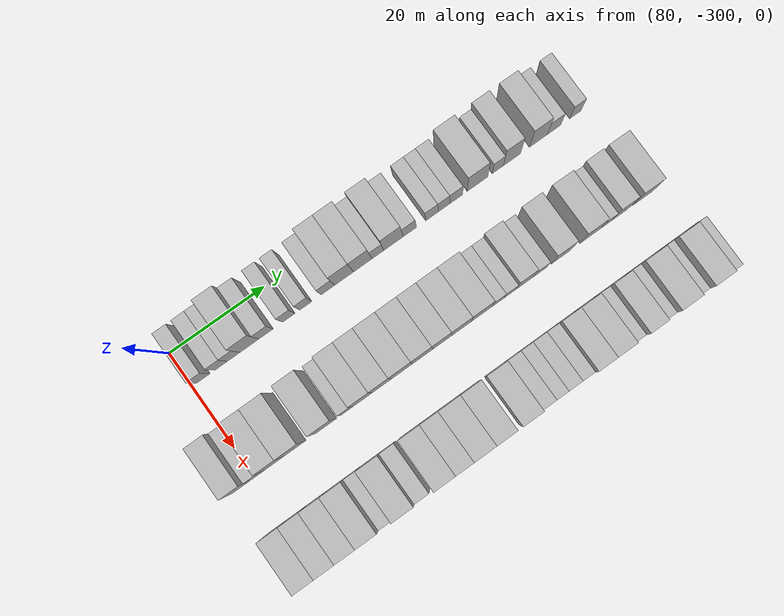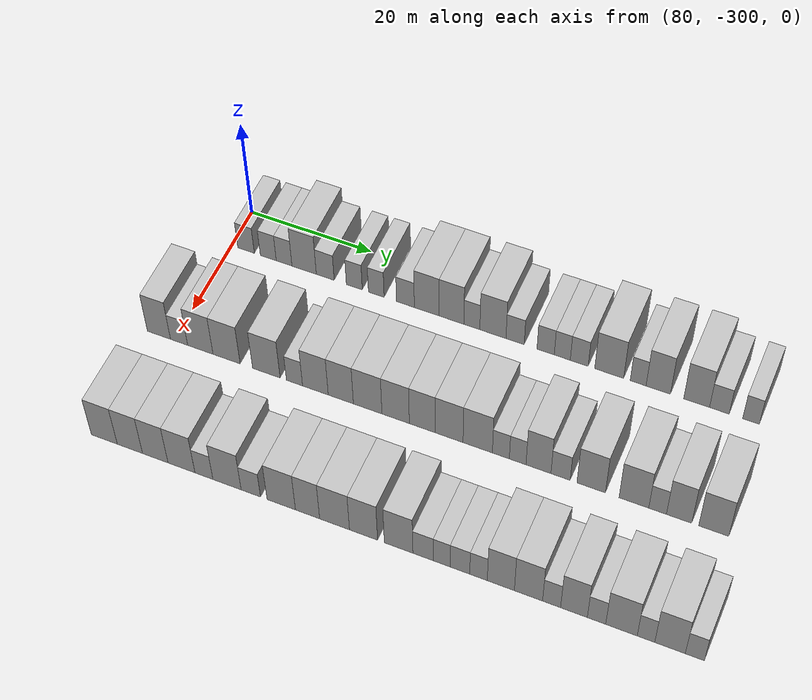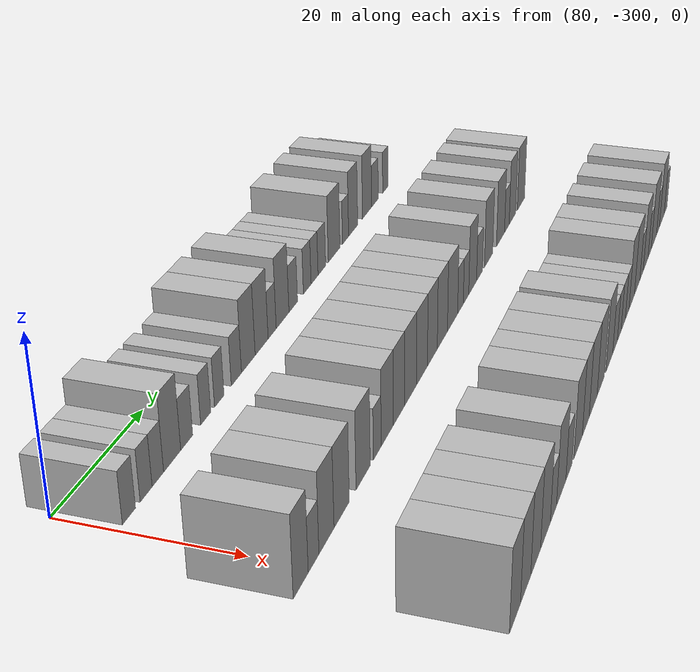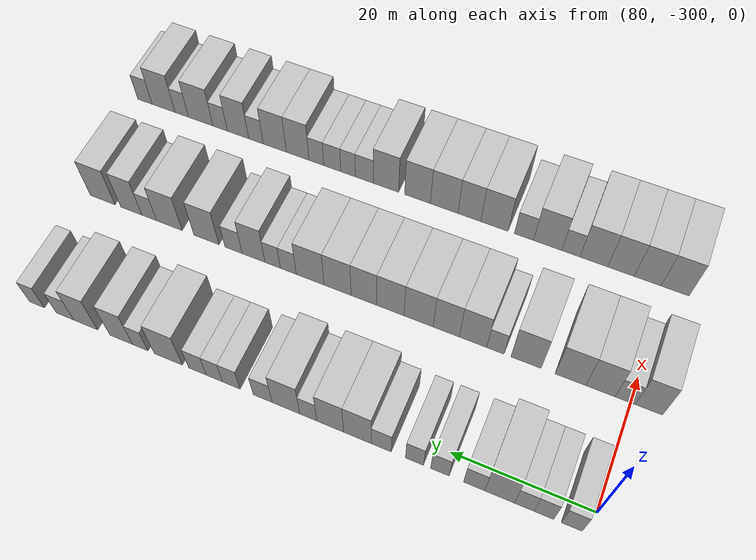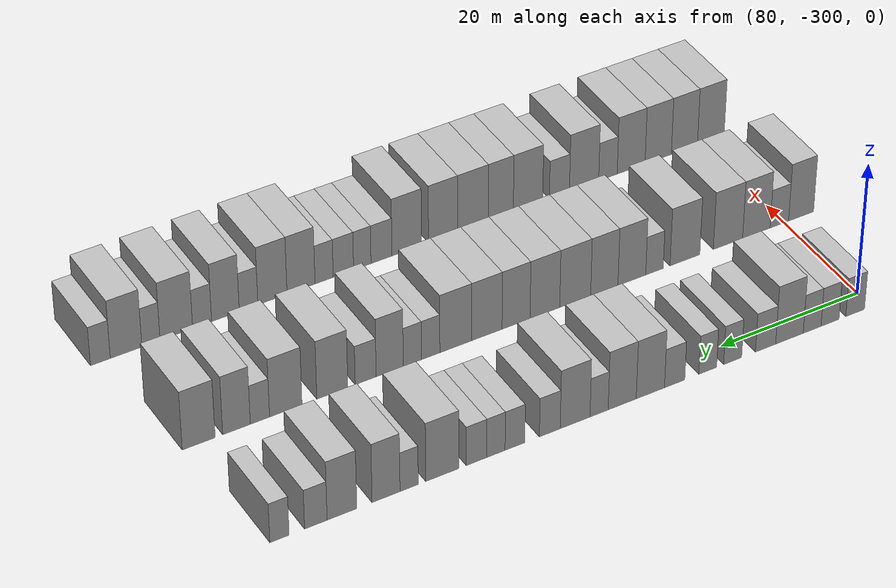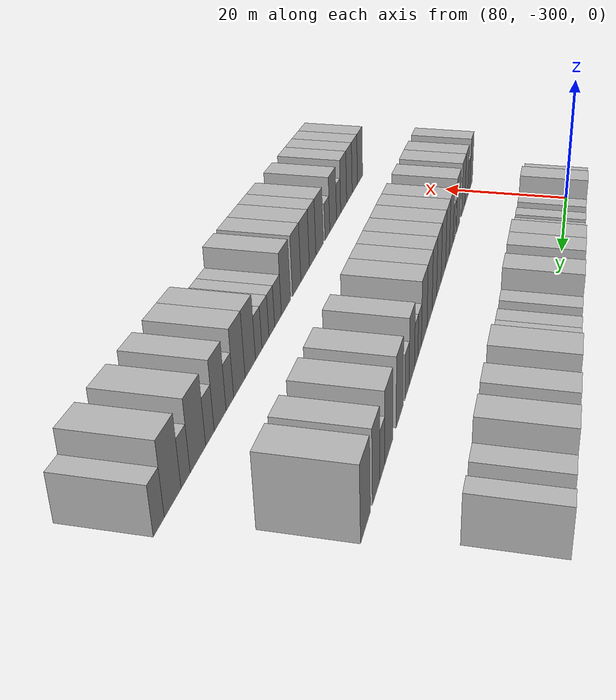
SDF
<sdf version="1.6">
 <world name="default">
  <model name="building_538">
   <static>1</static>
   <pose>82.0000 -297.5977 0 0.000000 0.000000 0.000000</pose>
   <link name="link">
    <pose>0 0 3.00 0 0 0</pose>
    <collision name="collision"><geometry><box><size>10.0000 2.7727 6.0000</size></box></geometry></collision>
    <visual name="visual">
     <cast_shadows>0</cast_shadows>
     <geometry><box><size>10.0000 2.7727 6.0000</size></box></geometry>
     <material>
      <script>
       <uri>model://HANNAS_wall/materials/scripts</uri>
       <uri>model://HANNAS_wall/materials/textures</uri>
       <name>vrc/HANNAS_wall</name>
      </script>
     </material>
    </visual>
   </link>
  </model>
  <model name="building_539">
   <static>1</static>
   <pose>82.0000 -293.8858 0 0.000000 0.000000 0.000000</pose>
   <link name="link">
    <pose>0 0 3.00 0 0 0</pose>
    <collision name="collision"><geometry><box><size>10.0000 2.6512 6.0000</size></box></geometry></collision>
    <visual name="visual">
     <cast_shadows>0</cast_shadows>
     <geometry><box><size>10.0000 2.6512 6.0000</size></box></geometry>
     <material>
      <script>
       <uri>model://HANNAS_wall/materials/scripts</uri>
       <uri>model://HANNAS_wall/materials/textures</uri>
       <name>vrc/HANNAS_wall</name>
      </script>
     </material>
    </visual>
   </link>
  </model>
  <model name="building_540">
   <static>1</static>
   <pose>82.0000 -291.2548 0 0.000000 0.000000 0.000000</pose>
   <link name="link">
    <pose>0 0 3.00 0 0 0</pose>
    <collision name="collision"><geometry><box><size>10.0000 2.6107 6.0000</size></box></geometry></collision>
    <visual name="visual">
     <cast_shadows>0</cast_shadows>
     <geometry><box><size>10.0000 2.6107 6.0000</size></box></geometry>
     <material>
      <script>
       <uri>model://HANNAS_wall/materials/scripts</uri>
       <uri>model://HANNAS_wall/materials/textures</uri>
       <name>vrc/HANNAS_wall</name>
      </script>
     </material>
    </visual>
   </link>
  </model>
  <model name="building_541">
   <static>1</static>
   <pose>82.0000 -287.9362 0 0.000000 0.000000 0.000000</pose>
   <link name="link">
    <pose>0 0 4.50 0 0 0</pose>
    <collision name="collision"><geometry><box><size>10.0000 4.0264 9.0000</size></box></geometry></collision>
    <visual name="visual">
     <cast_shadows>0</cast_shadows>
     <geometry><box><size>10.0000 4.0264 9.0000</size></box></geometry>
     <material>
      <script>
       <uri>model://HANNAS_wall/materials/scripts</uri>
       <uri>model://HANNAS_wall/materials/textures</uri>
       <name>vrc/HANNAS_wall</name>
      </script>
     </material>
    </visual>
   </link>
  </model>
  <model name="building_542">
   <static>1</static>
   <pose>82.0000 -284.4585 0 0.000000 0.000000 0.000000</pose>
   <link name="link">
    <pose>0 0 3.00 0 0 0</pose>
    <collision name="collision"><geometry><box><size>10.0000 2.9289 6.0000</size></box></geometry></collision>
    <visual name="visual">
     <cast_shadows>0</cast_shadows>
     <geometry><box><size>10.0000 2.9289 6.0000</size></box></geometry>
     <material>
      <script>
       <uri>model://HANNAS_wall/materials/scripts</uri>
       <uri>model://HANNAS_wall/materials/textures</uri>
       <name>vrc/HANNAS_wall</name>
      </script>
     </material>
    </visual>
   </link>
  </model>
  <model name="building_543">
   <static>1</static>
   <pose>82.0000 -279.6965 0 0.000000 0.000000 0.000000</pose>
   <link name="link">
    <pose>0 0 3.00 0 0 0</pose>
    <collision name="collision"><geometry><box><size>10.0000 2.5951 6.0000</size></box></geometry></collision>
    <visual name="visual">
     <cast_shadows>0</cast_shadows>
     <geometry><box><size>10.0000 2.5951 6.0000</size></box></geometry>
     <material>
      <script>
       <uri>model://HANNAS_wall/materials/scripts</uri>
       <uri>model://HANNAS_wall/materials/textures</uri>
       <name>vrc/HANNAS_wall</name>
      </script>
     </material>
    </visual>
   </link>
  </model>
  <model name="building_544">
   <static>1</static>
   <pose>82.0000 -276.1270 0 0.000000 0.000000 0.000000</pose>
   <link name="link">
    <pose>0 0 3.00 0 0 0</pose>
    <collision name="collision"><geometry><box><size>10.0000 2.5439 6.0000</size></box></geometry></collision>
    <visual name="visual">
     <cast_shadows>0</cast_shadows>
     <geometry><box><size>10.0000 2.5439 6.0000</size></box></geometry>
     <material>
      <script>
       <uri>model://HANNAS_wall/materials/scripts</uri>
       <uri>model://HANNAS_wall/materials/textures</uri>
       <name>vrc/HANNAS_wall</name>
      </script>
     </material>
    </visual>
   </link>
  </model>
  <model name="building_545">
   <static>1</static>
   <pose>82.0000 -271.4178 0 0.000000 0.000000 0.000000</pose>
   <link name="link">
    <pose>0 0 3.00 0 0 0</pose>
    <collision name="collision"><geometry><box><size>10.0000 2.8745 6.0000</size></box></geometry></collision>
    <visual name="visual">
     <cast_shadows>0</cast_shadows>
     <geometry><box><size>10.0000 2.8745 6.0000</size></box></geometry>
     <material>
      <script>
       <uri>model://HANNAS_wall/materials/scripts</uri>
       <uri>model://HANNAS_wall/materials/textures</uri>
       <name>vrc/HANNAS_wall</name>
      </script>
     </material>
    </visual>
   </link>
  </model>
  <model name="building_546">
   <static>1</static>
   <pose>82.0000 -267.9855 0 0.000000 0.000000 0.000000</pose>
   <link name="link">
    <pose>0 0 4.50 0 0 0</pose>
    <collision name="collision"><geometry><box><size>10.0000 3.9901 9.0000</size></box></geometry></collision>
    <visual name="visual">
     <cast_shadows>0</cast_shadows>
     <geometry><box><size>10.0000 3.9901 9.0000</size></box></geometry>
     <material>
      <script>
       <uri>model://HANNAS_wall/materials/scripts</uri>
       <uri>model://HANNAS_wall/materials/textures</uri>
       <name>vrc/HANNAS_wall</name>
      </script>
     </material>
    </visual>
   </link>
  </model>
  <model name="building_547">
   <static>1</static>
   <pose>82.0000 -264.0298 0 0.000000 0.000000 0.000000</pose>
   <link name="link">
    <pose>0 0 4.50 0 0 0</pose>
    <collision name="collision"><geometry><box><size>10.0000 3.9214 9.0000</size></box></geometry></collision>
    <visual name="visual">
     <cast_shadows>0</cast_shadows>
     <geometry><box><size>10.0000 3.9214 9.0000</size></box></geometry>
     <material>
      <script>
       <uri>model://HANNAS_wall/materials/scripts</uri>
       <uri>model://HANNAS_wall/materials/textures</uri>
       <name>vrc/HANNAS_wall</name>
      </script>
     </material>
    </visual>
   </link>
  </model>
  <model name="building_548">
   <static>1</static>
   <pose>82.0000 -260.8040 0 0.000000 0.000000 0.000000</pose>
   <link name="link">
    <pose>0 0 3.00 0 0 0</pose>
    <collision name="collision"><geometry><box><size>10.0000 2.5300 6.0000</size></box></geometry></collision>
    <visual name="visual">
     <cast_shadows>0</cast_shadows>
     <geometry><box><size>10.0000 2.5300 6.0000</size></box></geometry>
     <material>
      <script>
       <uri>model://HANNAS_wall/materials/scripts</uri>
       <uri>model://HANNAS_wall/materials/textures</uri>
       <name>vrc/HANNAS_wall</name>
      </script>
     </material>
    </visual>
   </link>
  </model>
  <model name="building_549">
   <static>1</static>
   <pose>82.0000 -257.4780 0 0.000000 0.000000 0.000000</pose>
   <link name="link">
    <pose>0 0 4.50 0 0 0</pose>
    <collision name="collision"><geometry><box><size>10.0000 4.1220 9.0000</size></box></geometry></collision>
    <visual name="visual">
     <cast_shadows>0</cast_shadows>
     <geometry><box><size>10.0000 4.1220 9.0000</size></box></geometry>
     <material>
      <script>
       <uri>model://HANNAS_wall/materials/scripts</uri>
       <uri>model://HANNAS_wall/materials/textures</uri>
       <name>vrc/HANNAS_wall</name>
      </script>
     </material>
    </visual>
   </link>
  </model>
  <model name="building_550">
   <static>1</static>
   <pose>82.0000 -253.9893 0 0.000000 0.000000 0.000000</pose>
   <link name="link">
    <pose>0 0 3.00 0 0 0</pose>
    <collision name="collision"><geometry><box><size>10.0000 2.8555 6.0000</size></box></geometry></collision>
    <visual name="visual">
     <cast_shadows>0</cast_shadows>
     <geometry><box><size>10.0000 2.8555 6.0000</size></box></geometry>
     <material>
      <script>
       <uri>model://HANNAS_wall/materials/scripts</uri>
       <uri>model://HANNAS_wall/materials/textures</uri>
       <name>vrc/HANNAS_wall</name>
      </script>
     </material>
    </visual>
   </link>
  </model>
  <model name="building_551">
   <static>1</static>
   <pose>82.0000 -249.2170 0 0.000000 0.000000 0.000000</pose>
   <link name="link">
    <pose>0 0 3.00 0 0 0</pose>
    <collision name="collision"><geometry><box><size>10.0000 2.6891 6.0000</size></box></geometry></collision>
    <visual name="visual">
     <cast_shadows>0</cast_shadows>
     <geometry><box><size>10.0000 2.6891 6.0000</size></box></geometry>
     <material>
      <script>
       <uri>model://HANNAS_wall/materials/scripts</uri>
       <uri>model://HANNAS_wall/materials/textures</uri>
       <name>vrc/HANNAS_wall</name>
      </script>
     </material>
    </visual>
   </link>
  </model>
  <model name="building_552">
   <static>1</static>
   <pose>82.0000 -246.6298 0 0.000000 0.000000 0.000000</pose>
   <link name="link">
    <pose>0 0 3.00 0 0 0</pose>
    <collision name="collision"><geometry><box><size>10.0000 2.4854 6.0000</size></box></geometry></collision>
    <visual name="visual">
     <cast_shadows>0</cast_shadows>
     <geometry><box><size>10.0000 2.4854 6.0000</size></box></geometry>
     <material>
      <script>
       <uri>model://HANNAS_wall/materials/scripts</uri>
       <uri>model://HANNAS_wall/materials/textures</uri>
       <name>vrc/HANNAS_wall</name>
      </script>
     </material>
    </visual>
   </link>
  </model>
  <model name="building_553">
   <static>1</static>
   <pose>82.0000 -244.0040 0 0.000000 0.000000 0.000000</pose>
   <link name="link">
    <pose>0 0 3.00 0 0 0</pose>
    <collision name="collision"><geometry><box><size>10.0000 2.7661 6.0000</size></box></geometry></collision>
    <visual name="visual">
     <cast_shadows>0</cast_shadows>
     <geometry><box><size>10.0000 2.7661 6.0000</size></box></geometry>
     <material>
      <script>
       <uri>model://HANNAS_wall/materials/scripts</uri>
       <uri>model://HANNAS_wall/materials/textures</uri>
       <name>vrc/HANNAS_wall</name>
      </script>
     </material>
    </visual>
   </link>
  </model>
  <model name="building_554">
   <static>1</static>
   <pose>82.0000 -239.4024 0 0.000000 0.000000 0.000000</pose>
   <link name="link">
    <pose>0 0 4.50 0 0 0</pose>
    <collision name="collision"><geometry><box><size>10.0000 4.4371 9.0000</size></box></geometry></collision>
    <visual name="visual">
     <cast_shadows>0</cast_shadows>
     <geometry><box><size>10.0000 4.4371 9.0000</size></box></geometry>
     <material>
      <script>
       <uri>model://HANNAS_wall/materials/scripts</uri>
       <uri>model://HANNAS_wall/materials/textures</uri>
       <name>vrc/HANNAS_wall</name>
      </script>
     </material>
    </visual>
   </link>
  </model>
  <model name="building_555">
   <static>1</static>
   <pose>82.0000 -234.9754 0 0.000000 0.000000 0.000000</pose>
   <link name="link">
    <pose>0 0 3.00 0 0 0</pose>
    <collision name="collision"><geometry><box><size>10.0000 2.4167 6.0000</size></box></geometry></collision>
    <visual name="visual">
     <cast_shadows>0</cast_shadows>
     <geometry><box><size>10.0000 2.4167 6.0000</size></box></geometry>
     <material>
      <script>
       <uri>model://HANNAS_wall/materials/scripts</uri>
       <uri>model://HANNAS_wall/materials/textures</uri>
       <name>vrc/HANNAS_wall</name>
      </script>
     </material>
    </visual>
   </link>
  </model>
  <model name="building_556">
   <static>1</static>
   <pose>82.0000 -231.9183 0 0.000000 0.000000 0.000000</pose>
   <link name="link">
    <pose>0 0 4.50 0 0 0</pose>
    <collision name="collision"><geometry><box><size>10.0000 3.6974 9.0000</size></box></geometry></collision>
    <visual name="visual">
     <cast_shadows>0</cast_shadows>
     <geometry><box><size>10.0000 3.6974 9.0000</size></box></geometry>
     <material>
      <script>
       <uri>model://HANNAS_wall/materials/scripts</uri>
       <uri>model://HANNAS_wall/materials/textures</uri>
       <name>vrc/HANNAS_wall</name>
      </script>
     </material>
    </visual>
   </link>
  </model>
  <model name="building_557">
   <static>1</static>
   <pose>82.0000 -226.1289 0 0.000000 0.000000 0.000000</pose>
   <link name="link">
    <pose>0 0 4.50 0 0 0</pose>
    <collision name="collision"><geometry><box><size>10.0000 3.8814 9.0000</size></box></geometry></collision>
    <visual name="visual">
     <cast_shadows>0</cast_shadows>
     <geometry><box><size>10.0000 3.8814 9.0000</size></box></geometry>
     <material>
      <script>
       <uri>model://HANNAS_wall/materials/scripts</uri>
       <uri>model://HANNAS_wall/materials/textures</uri>
       <name>vrc/HANNAS_wall</name>
      </script>
     </material>
    </visual>
   </link>
  </model>
  <model name="building_558">
   <static>1</static>
   <pose>82.0000 -222.7239 0 0.000000 0.000000 0.000000</pose>
   <link name="link">
    <pose>0 0 3.00 0 0 0</pose>
    <collision name="collision"><geometry><box><size>10.0000 2.9287 6.0000</size></box></geometry></collision>
    <visual name="visual">
     <cast_shadows>0</cast_shadows>
     <geometry><box><size>10.0000 2.9287 6.0000</size></box></geometry>
     <material>
      <script>
       <uri>model://HANNAS_wall/materials/scripts</uri>
       <uri>model://HANNAS_wall/materials/textures</uri>
       <name>vrc/HANNAS_wall</name>
      </script>
     </material>
    </visual>
   </link>
  </model>
  <model name="building_559">
   <static>1</static>
   <pose>82.0000 -218.0207 0 0.000000 0.000000 0.000000</pose>
   <link name="link">
    <pose>0 0 3.00 0 0 0</pose>
    <collision name="collision"><geometry><box><size>10.0000 2.4777 6.0000</size></box></geometry></collision>
    <visual name="visual">
     <cast_shadows>0</cast_shadows>
     <geometry><box><size>10.0000 2.4777 6.0000</size></box></geometry>
     <material>
      <script>
       <uri>model://HANNAS_wall/materials/scripts</uri>
       <uri>model://HANNAS_wall/materials/textures</uri>
       <name>vrc/HANNAS_wall</name>
      </script>
     </material>
    </visual>
   </link>
  </model>
  <model name="building_708">
   <static>1</static>
   <pose>101.0000 -302.5354 0 0.000000 0.000000 0.000000</pose>
   <link name="link">
    <pose>0 0 4.50 0 0 0</pose>
    <collision name="collision"><geometry><box><size>10.0000 3.7947 9.0000</size></box></geometry></collision>
    <visual name="visual">
     <cast_shadows>0</cast_shadows>
     <geometry><box><size>10.0000 3.7947 9.0000</size></box></geometry>
     <material>
      <script>
       <uri>model://HANNAS_wall/materials/scripts</uri>
       <uri>model://HANNAS_wall/materials/textures</uri>
       <name>vrc/HANNAS_wall</name>
      </script>
     </material>
    </visual>
   </link>
  </model>
  <model name="building_709">
   <static>1</static>
   <pose>101.0000 -299.2352 0 0.000000 0.000000 0.000000</pose>
   <link name="link">
    <pose>0 0 3.00 0 0 0</pose>
    <collision name="collision"><geometry><box><size>10.0000 2.8057 6.0000</size></box></geometry></collision>
    <visual name="visual">
     <cast_shadows>0</cast_shadows>
     <geometry><box><size>10.0000 2.8057 6.0000</size></box></geometry>
     <material>
      <script>
       <uri>model://HANNAS_wall/materials/scripts</uri>
       <uri>model://HANNAS_wall/materials/textures</uri>
       <name>vrc/HANNAS_wall</name>
      </script>
     </material>
    </visual>
   </link>
  </model>
  <model name="building_710">
   <static>1</static>
   <pose>101.0000 -295.7695 0 0.000000 0.000000 0.000000</pose>
   <link name="link">
    <pose>0 0 4.50 0 0 0</pose>
    <collision name="collision"><geometry><box><size>10.0000 4.1257 9.0000</size></box></geometry></collision>
    <visual name="visual">
     <cast_shadows>0</cast_shadows>
     <geometry><box><size>10.0000 4.1257 9.0000</size></box></geometry>
     <material>
      <script>
       <uri>model://HANNAS_wall/materials/scripts</uri>
       <uri>model://HANNAS_wall/materials/textures</uri>
       <name>vrc/HANNAS_wall</name>
      </script>
     </material>
    </visual>
   </link>
  </model>
  <model name="building_711">
   <static>1</static>
   <pose>101.0000 -291.5150 0 0.000000 0.000000 0.000000</pose>
   <link name="link">
    <pose>0 0 4.50 0 0 0</pose>
    <collision name="collision"><geometry><box><size>10.0000 4.3833 9.0000</size></box></geometry></collision>
    <visual name="visual">
     <cast_shadows>0</cast_shadows>
     <geometry><box><size>10.0000 4.3833 9.0000</size></box></geometry>
     <material>
      <script>
       <uri>model://HANNAS_wall/materials/scripts</uri>
       <uri>model://HANNAS_wall/materials/textures</uri>
       <name>vrc/HANNAS_wall</name>
      </script>
     </material>
    </visual>
   </link>
  </model>
  <model name="building_712">
   <static>1</static>
   <pose>101.0000 -285.1224 0 0.000000 0.000000 0.000000</pose>
   <link name="link">
    <pose>0 0 4.50 0 0 0</pose>
    <collision name="collision"><geometry><box><size>10.0000 4.4019 9.0000</size></box></geometry></collision>
    <visual name="visual">
     <cast_shadows>0</cast_shadows>
     <geometry><box><size>10.0000 4.4019 9.0000</size></box></geometry>
     <material>
      <script>
       <uri>model://HANNAS_wall/materials/scripts</uri>
       <uri>model://HANNAS_wall/materials/textures</uri>
       <name>vrc/HANNAS_wall</name>
      </script>
     </material>
    </visual>
   </link>
  </model>
  <model name="building_713">
   <static>1</static>
   <pose>101.0000 -280.6399 0 0.000000 0.000000 0.000000</pose>
   <link name="link">
    <pose>0 0 3.00 0 0 0</pose>
    <collision name="collision"><geometry><box><size>10.0000 2.5631 6.0000</size></box></geometry></collision>
    <visual name="visual">
     <cast_shadows>0</cast_shadows>
     <geometry><box><size>10.0000 2.5631 6.0000</size></box></geometry>
     <material>
      <script>
       <uri>model://HANNAS_wall/materials/scripts</uri>
       <uri>model://HANNAS_wall/materials/textures</uri>
       <name>vrc/HANNAS_wall</name>
      </script>
     </material>
    </visual>
   </link>
  </model>
  <model name="building_714">
   <static>1</static>
   <pose>101.0000 -277.3312 0 0.000000 0.000000 0.000000</pose>
   <link name="link">
    <pose>0 0 4.50 0 0 0</pose>
    <collision name="collision"><geometry><box><size>10.0000 4.0543 9.0000</size></box></geometry></collision>
    <visual name="visual">
     <cast_shadows>0</cast_shadows>
     <geometry><box><size>10.0000 4.0543 9.0000</size></box></geometry>
     <material>
      <script>
       <uri>model://HANNAS_wall/materials/scripts</uri>
       <uri>model://HANNAS_wall/materials/textures</uri>
       <name>vrc/HANNAS_wall</name>
      </script>
     </material>
    </visual>
   </link>
  </model>
  <model name="building_715">
   <static>1</static>
   <pose>101.0000 -273.3279 0 0.000000 0.000000 0.000000</pose>
   <link name="link">
    <pose>0 0 4.50 0 0 0</pose>
    <collision name="collision"><geometry><box><size>10.0000 3.9521 9.0000</size></box></geometry></collision>
    <visual name="visual">
     <cast_shadows>0</cast_shadows>
     <geometry><box><size>10.0000 3.9521 9.0000</size></box></geometry>
     <material>
      <script>
       <uri>model://HANNAS_wall/materials/scripts</uri>
       <uri>model://HANNAS_wall/materials/textures</uri>
       <name>vrc/HANNAS_wall</name>
      </script>
     </material>
    </visual>
   </link>
  </model>
  <model name="building_716">
   <static>1</static>
   <pose>101.0000 -269.1280 0 0.000000 0.000000 0.000000</pose>
   <link name="link">
    <pose>0 0 4.50 0 0 0</pose>
    <collision name="collision"><geometry><box><size>10.0000 4.4478 9.0000</size></box></geometry></collision>
    <visual name="visual">
     <cast_shadows>0</cast_shadows>
     <geometry><box><size>10.0000 4.4478 9.0000</size></box></geometry>
     <material>
      <script>
       <uri>model://HANNAS_wall/materials/scripts</uri>
       <uri>model://HANNAS_wall/materials/textures</uri>
       <name>vrc/HANNAS_wall</name>
      </script>
     </material>
    </visual>
   </link>
  </model>
  <model name="building_717">
   <static>1</static>
   <pose>101.0000 -264.7851 0 0.000000 0.000000 0.000000</pose>
   <link name="link">
    <pose>0 0 4.50 0 0 0</pose>
    <collision name="collision"><geometry><box><size>10.0000 4.2379 9.0000</size></box></geometry></collision>
    <visual name="visual">
     <cast_shadows>0</cast_shadows>
     <geometry><box><size>10.0000 4.2379 9.0000</size></box></geometry>
     <material>
      <script>
       <uri>model://HANNAS_wall/materials/scripts</uri>
       <uri>model://HANNAS_wall/materials/textures</uri>
       <name>vrc/HANNAS_wall</name>
      </script>
     </material>
    </visual>
   </link>
  </model>
  <model name="building_718">
   <static>1</static>
   <pose>101.0000 -260.6823 0 0.000000 0.000000 0.000000</pose>
   <link name="link">
    <pose>0 0 4.50 0 0 0</pose>
    <collision name="collision"><geometry><box><size>10.0000 3.9677 9.0000</size></box></geometry></collision>
    <visual name="visual">
     <cast_shadows>0</cast_shadows>
     <geometry><box><size>10.0000 3.9677 9.0000</size></box></geometry>
     <material>
      <script>
       <uri>model://HANNAS_wall/materials/scripts</uri>
       <uri>model://HANNAS_wall/materials/textures</uri>
       <name>vrc/HANNAS_wall</name>
      </script>
     </material>
    </visual>
   </link>
  </model>
  <model name="building_719">
   <static>1</static>
   <pose>101.0000 -256.5645 0 0.000000 0.000000 0.000000</pose>
   <link name="link">
    <pose>0 0 4.50 0 0 0</pose>
    <collision name="collision"><geometry><box><size>10.0000 4.2678 9.0000</size></box></geometry></collision>
    <visual name="visual">
     <cast_shadows>0</cast_shadows>
     <geometry><box><size>10.0000 4.2678 9.0000</size></box></geometry>
     <material>
      <script>
       <uri>model://HANNAS_wall/materials/scripts</uri>
       <uri>model://HANNAS_wall/materials/textures</uri>
       <name>vrc/HANNAS_wall</name>
      </script>
     </material>
    </visual>
   </link>
  </model>
  <model name="building_720">
   <static>1</static>
   <pose>101.0000 -252.2050 0 0.000000 0.000000 0.000000</pose>
   <link name="link">
    <pose>0 0 4.50 0 0 0</pose>
    <collision name="collision"><geometry><box><size>10.0000 4.4512 9.0000</size></box></geometry></collision>
    <visual name="visual">
     <cast_shadows>0</cast_shadows>
     <geometry><box><size>10.0000 4.4512 9.0000</size></box></geometry>
     <material>
      <script>
       <uri>model://HANNAS_wall/materials/scripts</uri>
       <uri>model://HANNAS_wall/materials/textures</uri>
       <name>vrc/HANNAS_wall</name>
      </script>
     </material>
    </visual>
   </link>
  </model>
  <model name="building_721">
   <static>1</static>
   <pose>101.0000 -248.7015 0 0.000000 0.000000 0.000000</pose>
   <link name="link">
    <pose>0 0 3.00 0 0 0</pose>
    <collision name="collision"><geometry><box><size>10.0000 2.5558 6.0000</size></box></geometry></collision>
    <visual name="visual">
     <cast_shadows>0</cast_shadows>
     <geometry><box><size>10.0000 2.5558 6.0000</size></box></geometry>
     <material>
      <script>
       <uri>model://HANNAS_wall/materials/scripts</uri>
       <uri>model://HANNAS_wall/materials/textures</uri>
       <name>vrc/HANNAS_wall</name>
      </script>
     </material>
    </visual>
   </link>
  </model>
  <model name="building_722">
   <static>1</static>
   <pose>101.0000 -246.1711 0 0.000000 0.000000 0.000000</pose>
   <link name="link">
    <pose>0 0 3.00 0 0 0</pose>
    <collision name="collision"><geometry><box><size>10.0000 2.5050 6.0000</size></box></geometry></collision>
    <visual name="visual">
     <cast_shadows>0</cast_shadows>
     <geometry><box><size>10.0000 2.5050 6.0000</size></box></geometry>
     <material>
      <script>
       <uri>model://HANNAS_wall/materials/scripts</uri>
       <uri>model://HANNAS_wall/materials/textures</uri>
       <name>vrc/HANNAS_wall</name>
      </script>
     </material>
    </visual>
   </link>
  </model>
  <model name="building_723">
   <static>1</static>
   <pose>101.0000 -243.0524 0 0.000000 0.000000 0.000000</pose>
   <link name="link">
    <pose>0 0 4.50 0 0 0</pose>
    <collision name="collision"><geometry><box><size>10.0000 3.7323 9.0000</size></box></geometry></collision>
    <visual name="visual">
     <cast_shadows>0</cast_shadows>
     <geometry><box><size>10.0000 3.7323 9.0000</size></box></geometry>
     <material>
      <script>
       <uri>model://HANNAS_wall/materials/scripts</uri>
       <uri>model://HANNAS_wall/materials/textures</uri>
       <name>vrc/HANNAS_wall</name>
      </script>
     </material>
    </visual>
   </link>
  </model>
  <model name="building_724">
   <static>1</static>
   <pose>101.0000 -239.7533 0 0.000000 0.000000 0.000000</pose>
   <link name="link">
    <pose>0 0 3.00 0 0 0</pose>
    <collision name="collision"><geometry><box><size>10.0000 2.8658 6.0000</size></box></geometry></collision>
    <visual name="visual">
     <cast_shadows>0</cast_shadows>
     <geometry><box><size>10.0000 2.8658 6.0000</size></box></geometry>
     <material>
      <script>
       <uri>model://HANNAS_wall/materials/scripts</uri>
       <uri>model://HANNAS_wall/materials/textures</uri>
       <name>vrc/HANNAS_wall</name>
      </script>
     </material>
    </visual>
   </link>
  </model>
  <model name="building_725">
   <static>1</static>
   <pose>101.0000 -235.2185 0 0.000000 0.000000 0.000000</pose>
   <link name="link">
    <pose>0 0 4.50 0 0 0</pose>
    <collision name="collision"><geometry><box><size>10.0000 4.2038 9.0000</size></box></geometry></collision>
    <visual name="visual">
     <cast_shadows>0</cast_shadows>
     <geometry><box><size>10.0000 4.2038 9.0000</size></box></geometry>
     <material>
      <script>
       <uri>model://HANNAS_wall/materials/scripts</uri>
       <uri>model://HANNAS_wall/materials/textures</uri>
       <name>vrc/HANNAS_wall</name>
      </script>
     </material>
    </visual>
   </link>
  </model>
  <model name="building_726">
   <static>1</static>
   <pose>101.0000 -228.9412 0 0.000000 0.000000 0.000000</pose>
   <link name="link">
    <pose>0 0 4.50 0 0 0</pose>
    <collision name="collision"><geometry><box><size>10.0000 4.3508 9.0000</size></box></geometry></collision>
    <visual name="visual">
     <cast_shadows>0</cast_shadows>
     <geometry><box><size>10.0000 4.3508 9.0000</size></box></geometry>
     <material>
      <script>
       <uri>model://HANNAS_wall/materials/scripts</uri>
       <uri>model://HANNAS_wall/materials/textures</uri>
       <name>vrc/HANNAS_wall</name>
      </script>
     </material>
    </visual>
   </link>
  </model>
  <model name="building_727">
   <static>1</static>
   <pose>101.0000 -225.4838 0 0.000000 0.000000 0.000000</pose>
   <link name="link">
    <pose>0 0 3.00 0 0 0</pose>
    <collision name="collision"><geometry><box><size>10.0000 2.5642 6.0000</size></box></geometry></collision>
    <visual name="visual">
     <cast_shadows>0</cast_shadows>
     <geometry><box><size>10.0000 2.5642 6.0000</size></box></geometry>
     <material>
      <script>
       <uri>model://HANNAS_wall/materials/scripts</uri>
       <uri>model://HANNAS_wall/materials/textures</uri>
       <name>vrc/HANNAS_wall</name>
      </script>
     </material>
    </visual>
   </link>
  </model>
  <model name="building_728">
   <static>1</static>
   <pose>101.0000 -222.3728 0 0.000000 0.000000 0.000000</pose>
   <link name="link">
    <pose>0 0 4.50 0 0 0</pose>
    <collision name="collision"><geometry><box><size>10.0000 3.6578 9.0000</size></box></geometry></collision>
    <visual name="visual">
     <cast_shadows>0</cast_shadows>
     <geometry><box><size>10.0000 3.6578 9.0000</size></box></geometry>
     <material>
      <script>
       <uri>model://HANNAS_wall/materials/scripts</uri>
       <uri>model://HANNAS_wall/materials/textures</uri>
       <name>vrc/HANNAS_wall</name>
      </script>
     </material>
    </visual>
   </link>
  </model>
  <model name="building_729">
   <static>1</static>
   <pose>101.0000 -217.3804 0 0.000000 0.000000 0.000000</pose>
   <link name="link">
    <pose>0 0 4.50 0 0 0</pose>
    <collision name="collision"><geometry><box><size>10.0000 4.3270 9.0000</size></box></geometry></collision>
    <visual name="visual">
     <cast_shadows>0</cast_shadows>
     <geometry><box><size>10.0000 4.3270 9.0000</size></box></geometry>
     <material>
      <script>
       <uri>model://HANNAS_wall/materials/scripts</uri>
       <uri>model://HANNAS_wall/materials/textures</uri>
       <name>vrc/HANNAS_wall</name>
      </script>
     </material>
    </visual>
   </link>
  </model>
  <model name="building_884">
   <static>1</static>
   <pose>120.0000 -301.3419 0 0.000000 0.000000 0.000000</pose>
   <link name="link">
    <pose>0 0 4.50 0 0 0</pose>
    <collision name="collision"><geometry><box><size>10.0000 4.1235 9.0000</size></box></geometry></collision>
    <visual name="visual">
     <cast_shadows>0</cast_shadows>
     <geometry><box><size>10.0000 4.1235 9.0000</size></box></geometry>
     <material>
      <script>
       <uri>model://HANNAS_wall/materials/scripts</uri>
       <uri>model://HANNAS_wall/materials/textures</uri>
       <name>vrc/HANNAS_wall</name>
      </script>
     </material>
    </visual>
   </link>
  </model>
  <model name="building_885">
   <static>1</static>
   <pose>120.0000 -297.2781 0 0.000000 0.000000 0.000000</pose>
   <link name="link">
    <pose>0 0 4.50 0 0 0</pose>
    <collision name="collision"><geometry><box><size>10.0000 4.0041 9.0000</size></box></geometry></collision>
    <visual name="visual">
     <cast_shadows>0</cast_shadows>
     <geometry><box><size>10.0000 4.0041 9.0000</size></box></geometry>
     <material>
      <script>
       <uri>model://HANNAS_wall/materials/scripts</uri>
       <uri>model://HANNAS_wall/materials/textures</uri>
       <name>vrc/HANNAS_wall</name>
      </script>
     </material>
    </visual>
   </link>
  </model>
  <model name="building_886">
   <static>1</static>
   <pose>120.0000 -293.2750 0 0.000000 0.000000 0.000000</pose>
   <link name="link">
    <pose>0 0 4.50 0 0 0</pose>
    <collision name="collision"><geometry><box><size>10.0000 4.0022 9.0000</size></box></geometry></collision>
    <visual name="visual">
     <cast_shadows>0</cast_shadows>
     <geometry><box><size>10.0000 4.0022 9.0000</size></box></geometry>
     <material>
      <script>
       <uri>model://HANNAS_wall/materials/scripts</uri>
       <uri>model://HANNAS_wall/materials/textures</uri>
       <name>vrc/HANNAS_wall</name>
      </script>
     </material>
    </visual>
   </link>
  </model>
  <model name="building_887">
   <static>1</static>
   <pose>120.0000 -289.1677 0 0.000000 0.000000 0.000000</pose>
   <link name="link">
    <pose>0 0 4.50 0 0 0</pose>
    <collision name="collision"><geometry><box><size>10.0000 4.2124 9.0000</size></box></geometry></collision>
    <visual name="visual">
     <cast_shadows>0</cast_shadows>
     <geometry><box><size>10.0000 4.2124 9.0000</size></box></geometry>
     <material>
      <script>
       <uri>model://HANNAS_wall/materials/scripts</uri>
       <uri>model://HANNAS_wall/materials/textures</uri>
       <name>vrc/HANNAS_wall</name>
      </script>
     </material>
    </visual>
   </link>
  </model>
  <model name="building_888">
   <static>1</static>
   <pose>120.0000 -285.6672 0 0.000000 0.000000 0.000000</pose>
   <link name="link">
    <pose>0 0 3.00 0 0 0</pose>
    <collision name="collision"><geometry><box><size>10.0000 2.7884 6.0000</size></box></geometry></collision>
    <visual name="visual">
     <cast_shadows>0</cast_shadows>
     <geometry><box><size>10.0000 2.7884 6.0000</size></box></geometry>
     <material>
      <script>
       <uri>model://HANNAS_wall/materials/scripts</uri>
       <uri>model://HANNAS_wall/materials/textures</uri>
       <name>vrc/HANNAS_wall</name>
      </script>
     </material>
    </visual>
   </link>
  </model>
  <model name="building_889">
   <static>1</static>
   <pose>120.0000 -282.0864 0 0.000000 0.000000 0.000000</pose>
   <link name="link">
    <pose>0 0 4.50 0 0 0</pose>
    <collision name="collision"><geometry><box><size>10.0000 4.3732 9.0000</size></box></geometry></collision>
    <visual name="visual">
     <cast_shadows>0</cast_shadows>
     <geometry><box><size>10.0000 4.3732 9.0000</size></box></geometry>
     <material>
      <script>
       <uri>model://HANNAS_wall/materials/scripts</uri>
       <uri>model://HANNAS_wall/materials/textures</uri>
       <name>vrc/HANNAS_wall</name>
      </script>
     </material>
    </visual>
   </link>
  </model>
  <model name="building_890">
   <static>1</static>
   <pose>120.0000 -278.4117 0 0.000000 0.000000 0.000000</pose>
   <link name="link">
    <pose>0 0 3.00 0 0 0</pose>
    <collision name="collision"><geometry><box><size>10.0000 2.9762 6.0000</size></box></geometry></collision>
    <visual name="visual">
     <cast_shadows>0</cast_shadows>
     <geometry><box><size>10.0000 2.9762 6.0000</size></box></geometry>
     <material>
      <script>
       <uri>model://HANNAS_wall/materials/scripts</uri>
       <uri>model://HANNAS_wall/materials/textures</uri>
       <name>vrc/HANNAS_wall</name>
      </script>
     </material>
    </visual>
   </link>
  </model>
  <model name="building_891">
   <static>1</static>
   <pose>120.0000 -273.7614 0 0.000000 0.000000 0.000000</pose>
   <link name="link">
    <pose>0 0 4.50 0 0 0</pose>
    <collision name="collision"><geometry><box><size>10.0000 4.3244 9.0000</size></box></geometry></collision>
    <visual name="visual">
     <cast_shadows>0</cast_shadows>
     <geometry><box><size>10.0000 4.3244 9.0000</size></box></geometry>
     <material>
      <script>
       <uri>model://HANNAS_wall/materials/scripts</uri>
       <uri>model://HANNAS_wall/materials/textures</uri>
       <name>vrc/HANNAS_wall</name>
      </script>
     </material>
    </visual>
   </link>
  </model>
  <model name="building_892">
   <static>1</static>
   <pose>120.0000 -269.7646 0 0.000000 0.000000 0.000000</pose>
   <link name="link">
    <pose>0 0 4.50 0 0 0</pose>
    <collision name="collision"><geometry><box><size>10.0000 3.6692 9.0000</size></box></geometry></collision>
    <visual name="visual">
     <cast_shadows>0</cast_shadows>
     <geometry><box><size>10.0000 3.6692 9.0000</size></box></geometry>
     <material>
      <script>
       <uri>model://HANNAS_wall/materials/scripts</uri>
       <uri>model://HANNAS_wall/materials/textures</uri>
       <name>vrc/HANNAS_wall</name>
      </script>
     </material>
    </visual>
   </link>
  </model>
  <model name="building_893">
   <static>1</static>
   <pose>120.0000 -265.6884 0 0.000000 0.000000 0.000000</pose>
   <link name="link">
    <pose>0 0 4.50 0 0 0</pose>
    <collision name="collision"><geometry><box><size>10.0000 4.4832 9.0000</size></box></geometry></collision>
    <visual name="visual">
     <cast_shadows>0</cast_shadows>
     <geometry><box><size>10.0000 4.4832 9.0000</size></box></geometry>
     <material>
      <script>
       <uri>model://HANNAS_wall/materials/scripts</uri>
       <uri>model://HANNAS_wall/materials/textures</uri>
       <name>vrc/HANNAS_wall</name>
      </script>
     </material>
    </visual>
   </link>
  </model>
  <model name="building_894">
   <static>1</static>
   <pose>120.0000 -261.3462 0 0.000000 0.000000 0.000000</pose>
   <link name="link">
    <pose>0 0 4.50 0 0 0</pose>
    <collision name="collision"><geometry><box><size>10.0000 4.2012 9.0000</size></box></geometry></collision>
    <visual name="visual">
     <cast_shadows>0</cast_shadows>
     <geometry><box><size>10.0000 4.2012 9.0000</size></box></geometry>
     <material>
      <script>
       <uri>model://HANNAS_wall/materials/scripts</uri>
       <uri>model://HANNAS_wall/materials/textures</uri>
       <name>vrc/HANNAS_wall</name>
      </script>
     </material>
    </visual>
   </link>
  </model>
  <model name="building_895">
   <static>1</static>
   <pose>120.0000 -256.1289 0 0.000000 0.000000 0.000000</pose>
   <link name="link">
    <pose>0 0 4.50 0 0 0</pose>
    <collision name="collision"><geometry><box><size>10.0000 4.2335 9.0000</size></box></geometry></collision>
    <visual name="visual">
     <cast_shadows>0</cast_shadows>
     <geometry><box><size>10.0000 4.2335 9.0000</size></box></geometry>
     <material>
      <script>
       <uri>model://HANNAS_wall/materials/scripts</uri>
       <uri>model://HANNAS_wall/materials/textures</uri>
       <name>vrc/HANNAS_wall</name>
      </script>
     </material>
    </visual>
   </link>
  </model>
  <model name="building_896">
   <static>1</static>
   <pose>120.0000 -252.5176 0 0.000000 0.000000 0.000000</pose>
   <link name="link">
    <pose>0 0 3.00 0 0 0</pose>
    <collision name="collision"><geometry><box><size>10.0000 2.9891 6.0000</size></box></geometry></collision>
    <visual name="visual">
     <cast_shadows>0</cast_shadows>
     <geometry><box><size>10.0000 2.9891 6.0000</size></box></geometry>
     <material>
      <script>
       <uri>model://HANNAS_wall/materials/scripts</uri>
       <uri>model://HANNAS_wall/materials/textures</uri>
       <name>vrc/HANNAS_wall</name>
      </script>
     </material>
    </visual>
   </link>
  </model>
  <model name="building_897">
   <static>1</static>
   <pose>120.0000 -249.7883 0 0.000000 0.000000 0.000000</pose>
   <link name="link">
    <pose>0 0 3.00 0 0 0</pose>
    <collision name="collision"><geometry><box><size>10.0000 2.4694 6.0000</size></box></geometry></collision>
    <visual name="visual">
     <cast_shadows>0</cast_shadows>
     <geometry><box><size>10.0000 2.4694 6.0000</size></box></geometry>
     <material>
      <script>
       <uri>model://HANNAS_wall/materials/scripts</uri>
       <uri>model://HANNAS_wall/materials/textures</uri>
       <name>vrc/HANNAS_wall</name>
      </script>
     </material>
    </visual>
   </link>
  </model>
  <model name="building_898">
   <static>1</static>
   <pose>120.0000 -247.1186 0 0.000000 0.000000 0.000000</pose>
   <link name="link">
    <pose>0 0 3.00 0 0 0</pose>
    <collision name="collision"><geometry><box><size>10.0000 2.8700 6.0000</size></box></geometry></collision>
    <visual name="visual">
     <cast_shadows>0</cast_shadows>
     <geometry><box><size>10.0000 2.8700 6.0000</size></box></geometry>
     <material>
      <script>
       <uri>model://HANNAS_wall/materials/scripts</uri>
       <uri>model://HANNAS_wall/materials/textures</uri>
       <name>vrc/HANNAS_wall</name>
      </script>
     </material>
    </visual>
   </link>
  </model>
  <model name="building_899">
   <static>1</static>
   <pose>120.0000 -244.4104 0 0.000000 0.000000 0.000000</pose>
   <link name="link">
    <pose>0 0 3.00 0 0 0</pose>
    <collision name="collision"><geometry><box><size>10.0000 2.5466 6.0000</size></box></geometry></collision>
    <visual name="visual">
     <cast_shadows>0</cast_shadows>
     <geometry><box><size>10.0000 2.5466 6.0000</size></box></geometry>
     <material>
      <script>
       <uri>model://HANNAS_wall/materials/scripts</uri>
       <uri>model://HANNAS_wall/materials/textures</uri>
       <name>vrc/HANNAS_wall</name>
      </script>
     </material>
    </visual>
   </link>
  </model>
  <model name="building_900">
   <static>1</static>
   <pose>120.0000 -241.1797 0 0.000000 0.000000 0.000000</pose>
   <link name="link">
    <pose>0 0 4.50 0 0 0</pose>
    <collision name="collision"><geometry><box><size>10.0000 3.9148 9.0000</size></box></geometry></collision>
    <visual name="visual">
     <cast_shadows>0</cast_shadows>
     <geometry><box><size>10.0000 3.9148 9.0000</size></box></geometry>
     <material>
      <script>
       <uri>model://HANNAS_wall/materials/scripts</uri>
       <uri>model://HANNAS_wall/materials/textures</uri>
       <name>vrc/HANNAS_wall</name>
      </script>
     </material>
    </visual>
   </link>
  </model>
  <model name="building_901">
   <static>1</static>
   <pose>120.0000 -237.1986 0 0.000000 0.000000 0.000000</pose>
   <link name="link">
    <pose>0 0 4.50 0 0 0</pose>
    <collision name="collision"><geometry><box><size>10.0000 4.0474 9.0000</size></box></geometry></collision>
    <visual name="visual">
     <cast_shadows>0</cast_shadows>
     <geometry><box><size>10.0000 4.0474 9.0000</size></box></geometry>
     <material>
      <script>
       <uri>model://HANNAS_wall/materials/scripts</uri>
       <uri>model://HANNAS_wall/materials/textures</uri>
       <name>vrc/HANNAS_wall</name>
      </script>
     </material>
    </visual>
   </link>
  </model>
  <model name="building_902">
   <static>1</static>
   <pose>120.0000 -233.8926 0 0.000000 0.000000 0.000000</pose>
   <link name="link">
    <pose>0 0 3.00 0 0 0</pose>
    <collision name="collision"><geometry><box><size>10.0000 2.5646 6.0000</size></box></geometry></collision>
    <visual name="visual">
     <cast_shadows>0</cast_shadows>
     <geometry><box><size>10.0000 2.5646 6.0000</size></box></geometry>
     <material>
      <script>
       <uri>model://HANNAS_wall/materials/scripts</uri>
       <uri>model://HANNAS_wall/materials/textures</uri>
       <name>vrc/HANNAS_wall</name>
      </script>
     </material>
    </visual>
   </link>
  </model>
  <model name="building_903">
   <static>1</static>
   <pose>120.0000 -230.7108 0 0.000000 0.000000 0.000000</pose>
   <link name="link">
    <pose>0 0 4.50 0 0 0</pose>
    <collision name="collision"><geometry><box><size>10.0000 3.7990 9.0000</size></box></geometry></collision>
    <visual name="visual">
     <cast_shadows>0</cast_shadows>
     <geometry><box><size>10.0000 3.7990 9.0000</size></box></geometry>
     <material>
      <script>
       <uri>model://HANNAS_wall/materials/scripts</uri>
       <uri>model://HANNAS_wall/materials/textures</uri>
       <name>vrc/HANNAS_wall</name>
      </script>
     </material>
    </visual>
   </link>
  </model>
  <model name="building_904">
   <static>1</static>
   <pose>120.0000 -227.5155 0 0.000000 0.000000 0.000000</pose>
   <link name="link">
    <pose>0 0 3.00 0 0 0</pose>
    <collision name="collision"><geometry><box><size>10.0000 2.5916 6.0000</size></box></geometry></collision>
    <visual name="visual">
     <cast_shadows>0</cast_shadows>
     <geometry><box><size>10.0000 2.5916 6.0000</size></box></geometry>
     <material>
      <script>
       <uri>model://HANNAS_wall/materials/scripts</uri>
       <uri>model://HANNAS_wall/materials/textures</uri>
       <name>vrc/HANNAS_wall</name>
      </script>
     </material>
    </visual>
   </link>
  </model>
  <model name="building_905">
   <static>1</static>
   <pose>120.0000 -224.0083 0 0.000000 0.000000 0.000000</pose>
   <link name="link">
    <pose>0 0 4.50 0 0 0</pose>
    <collision name="collision"><geometry><box><size>10.0000 4.4228 9.0000</size></box></geometry></collision>
    <visual name="visual">
     <cast_shadows>0</cast_shadows>
     <geometry><box><size>10.0000 4.4228 9.0000</size></box></geometry>
     <material>
      <script>
       <uri>model://HANNAS_wall/materials/scripts</uri>
       <uri>model://HANNAS_wall/materials/textures</uri>
       <name>vrc/HANNAS_wall</name>
      </script>
     </material>
    </visual>
   </link>
  </model>
  <model name="building_906">
   <static>1</static>
   <pose>120.0000 -220.5728 0 0.000000 0.000000 0.000000</pose>
   <link name="link">
    <pose>0 0 3.00 0 0 0</pose>
    <collision name="collision"><geometry><box><size>10.0000 2.4481 6.0000</size></box></geometry></collision>
    <visual name="visual">
     <cast_shadows>0</cast_shadows>
     <geometry><box><size>10.0000 2.4481 6.0000</size></box></geometry>
     <material>
      <script>
       <uri>model://HANNAS_wall/materials/scripts</uri>
       <uri>model://HANNAS_wall/materials/textures</uri>
       <name>vrc/HANNAS_wall</name>
      </script>
     </material>
    </visual>
   </link>
  </model>
  <model name="building_907">
   <static>1</static>
   <pose>120.0000 -217.2310 0 0.000000 0.000000 0.000000</pose>
   <link name="link">
    <pose>0 0 4.50 0 0 0</pose>
    <collision name="collision"><geometry><box><size>10.0000 4.2356 9.0000</size></box></geometry></collision>
    <visual name="visual">
     <cast_shadows>0</cast_shadows>
     <geometry><box><size>10.0000 4.2356 9.0000</size></box></geometry>
     <material>
      <script>
       <uri>model://HANNAS_wall/materials/scripts</uri>
       <uri>model://HANNAS_wall/materials/textures</uri>
       <name>vrc/HANNAS_wall</name>
      </script>
     </material>
    </visual>
   </link>
  </model>
  <model name="building_908">
   <static>1</static>
   <pose>120.0000 -213.7944 0 0.000000 0.000000 0.000000</pose>
   <link name="link">
    <pose>0 0 3.00 0 0 0</pose>
    <collision name="collision"><geometry><box><size>10.0000 2.6375 6.0000</size></box></geometry></collision>
    <visual name="visual">
     <cast_shadows>0</cast_shadows>
     <geometry><box><size>10.0000 2.6375 6.0000</size></box></geometry>
     <material>
      <script>
       <uri>model://HANNAS_wall/materials/scripts</uri>
       <uri>model://HANNAS_wall/materials/textures</uri>
       <name>vrc/HANNAS_wall</name>
      </script>
     </material>
    </visual>
   </link>
  </model>
 </world>
</sdf>
